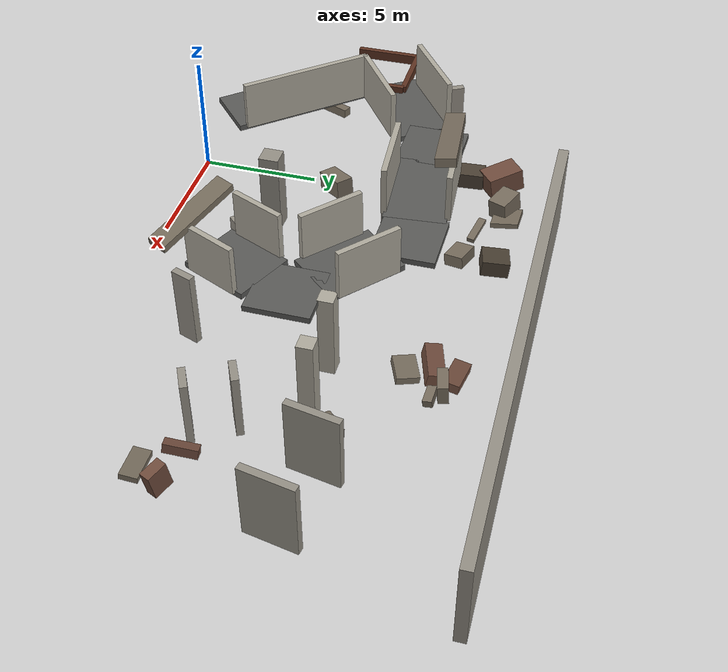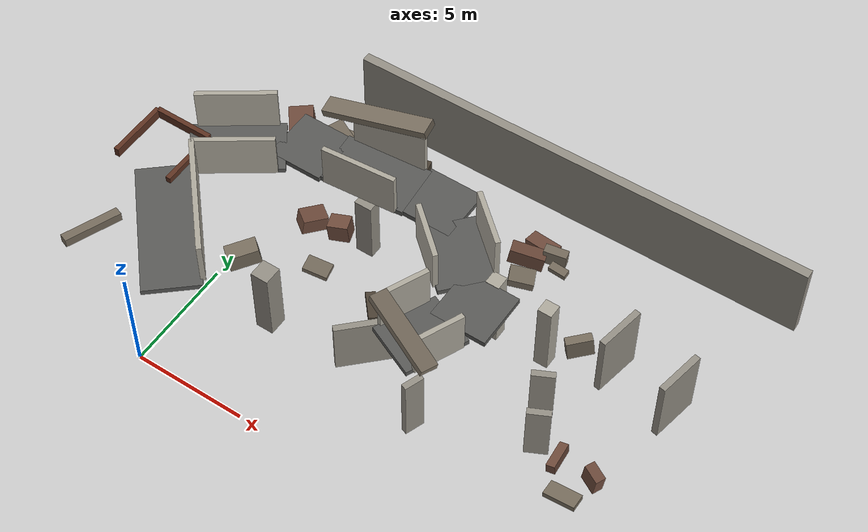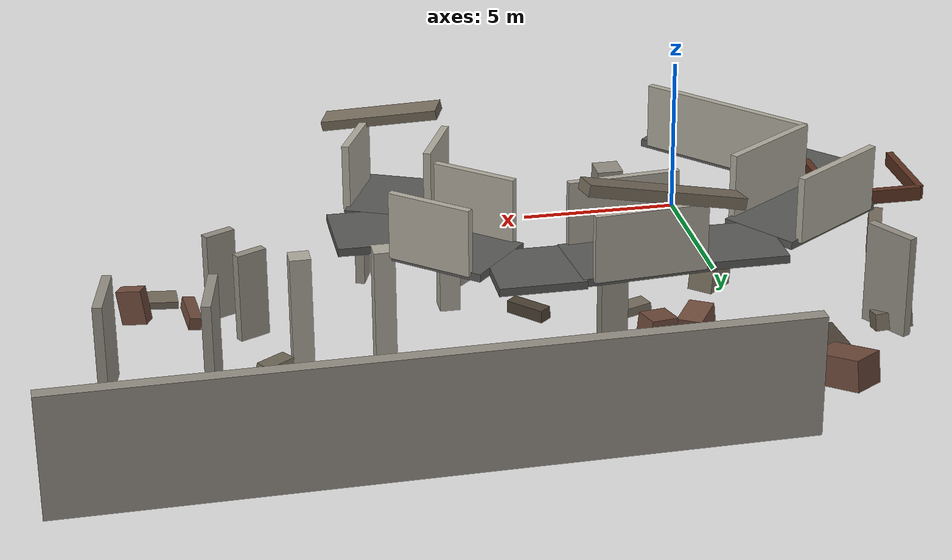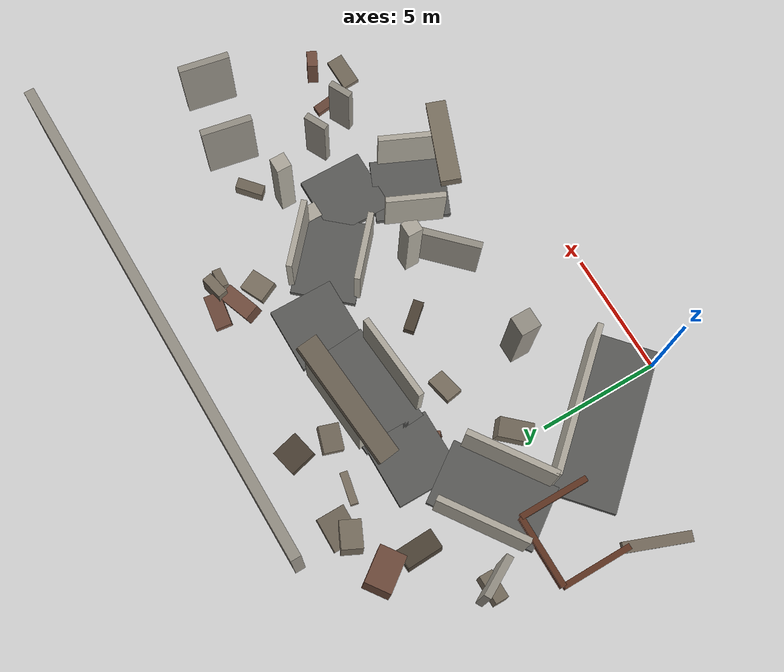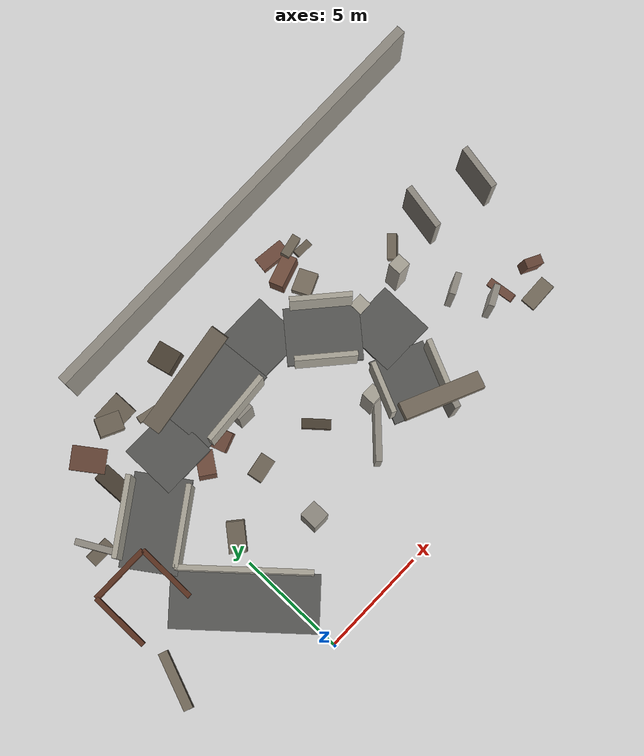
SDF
<sdf version="1.6">
 <model name="ruins_urban_01_medium">
  <static>true</static>
  <link name="002_north_boundary_east">
   <pose>10.50000 15.90000 1.80000 0.00000 0.00000 0.01500</pose>
   <visual name="visual">
    <geometry><box><size>21.00000 0.42000 3.60000</size></box></geometry>
    <material>
     <ambient>0.580 0.560 0.520 1</ambient>
     <diffuse>0.580 0.560 0.520 1</diffuse>
     <specular>0.03 0.03 0.03 1</specular>
    </material>
   </visual>
   <collision name="collision">
    <geometry><box><size>21.00000 0.42000 3.60000</size></box></geometry>
    <surface>
     <contact><collide_bitmask>0x01</collide_bitmask></contact>
     <friction><ode><mu>1.0</mu><mu2>1.0</mu2></ode></friction>
    </surface>
   </collision>
  </link>
  <link name="016_ground_corridor_n4_n5_left">
   <pose>-3.94751 9.97361 1.57500 0.00000 0.00000 -1.06370</pose>
   <visual name="visual">
    <geometry><box><size>1.64782 0.28000 3.15000</size></box></geometry>
    <material>
     <ambient>0.580 0.560 0.520 1</ambient>
     <diffuse>0.580 0.560 0.520 1</diffuse>
     <specular>0.03 0.03 0.03 1</specular>
    </material>
   </visual>
   <collision name="collision">
    <geometry><box><size>1.64782 0.28000 3.15000</size></box></geometry>
    <surface>
     <contact><collide_bitmask>0x01</collide_bitmask></contact>
     <friction><ode><mu>1.0</mu><mu2>1.0</mu2></ode></friction>
    </surface>
   </collision>
  </link>
  <link name="026_ground_corridor_g7_en1_left">
   <pose>10.85071 3.46194 1.57500 0.00000 0.00000 1.22007</pose>
   <visual name="visual">
    <geometry><box><size>0.86578 0.28000 3.15000</size></box></geometry>
    <material>
     <ambient>0.580 0.560 0.520 1</ambient>
     <diffuse>0.580 0.560 0.520 1</diffuse>
     <specular>0.03 0.03 0.03 1</specular>
    </material>
   </visual>
   <collision name="collision">
    <geometry><box><size>0.86578 0.28000 3.15000</size></box></geometry>
    <surface>
     <contact><collide_bitmask>0x01</collide_bitmask></contact>
     <friction><ode><mu>1.0</mu><mu2>1.0</mu2></ode></friction>
    </surface>
   </collision>
  </link>
  <link name="028_ground_corridor_en1_en2_left">
   <pose>14.61316 6.77368 1.37500 0.00000 0.00000 0.46365</pose>
   <visual name="visual">
    <geometry><box><size>0.97214 0.28000 2.75000</size></box></geometry>
    <material>
     <ambient>0.580 0.560 0.520 1</ambient>
     <diffuse>0.580 0.560 0.520 1</diffuse>
     <specular>0.03 0.03 0.03 1</specular>
    </material>
   </visual>
   <collision name="collision">
    <geometry><box><size>0.97214 0.28000 2.75000</size></box></geometry>
    <surface>
     <contact><collide_bitmask>0x01</collide_bitmask></contact>
     <friction><ode><mu>1.0</mu><mu2>1.0</mu2></ode></friction>
    </surface>
   </collision>
  </link>
  <link name="029_ground_corridor_en1_en2_right">
   <pose>15.38684 5.22632 1.37500 0.00000 0.00000 0.46365</pose>
   <visual name="visual">
    <geometry><box><size>0.97214 0.28000 2.75000</size></box></geometry>
    <material>
     <ambient>0.580 0.560 0.520 1</ambient>
     <diffuse>0.580 0.560 0.520 1</diffuse>
     <specular>0.03 0.03 0.03 1</specular>
    </material>
   </visual>
   <collision name="collision">
    <geometry><box><size>0.97214 0.28000 2.75000</size></box></geometry>
    <surface>
     <contact><collide_bitmask>0x01</collide_bitmask></contact>
     <friction><ode><mu>1.0</mu><mu2>1.0</mu2></ode></friction>
    </surface>
   </collision>
  </link>
  <link name="030_ground_corridor_en2_dead_ne_left">
   <pose>16.03403 10.01654 1.57500 0.00000 0.00000 1.39094</pose>
   <visual name="visual">
    <geometry><box><size>2.09017 0.28000 3.15000</size></box></geometry>
    <material>
     <ambient>0.580 0.560 0.520 1</ambient>
     <diffuse>0.580 0.560 0.520 1</diffuse>
     <specular>0.03 0.03 0.03 1</specular>
    </material>
   </visual>
   <collision name="collision">
    <geometry><box><size>2.09017 0.28000 3.15000</size></box></geometry>
    <surface>
     <contact><collide_bitmask>0x01</collide_bitmask></contact>
     <friction><ode><mu>1.0</mu><mu2>1.0</mu2></ode></friction>
    </surface>
   </collision>
  </link>
  <link name="031_ground_corridor_en2_dead_ne_right">
   <pose>18.96597 9.48346 1.57500 0.00000 0.00000 1.39094</pose>
   <visual name="visual">
    <geometry><box><size>2.09017 0.28000 3.15000</size></box></geometry>
    <material>
     <ambient>0.580 0.560 0.520 1</ambient>
     <diffuse>0.580 0.560 0.520 1</diffuse>
     <specular>0.03 0.03 0.03 1</specular>
    </material>
   </visual>
   <collision name="collision">
    <geometry><box><size>2.09017 0.28000 3.15000</size></box></geometry>
    <surface>
     <contact><collide_bitmask>0x01</collide_bitmask></contact>
     <friction><ode><mu>1.0</mu><mu2>1.0</mu2></ode></friction>
    </surface>
   </collision>
  </link>
  <link name="054_fixed_column_03">
   <pose>8.60000 6.00000 1.75000 0.00000 0.00000 0.00000</pose>
   <visual name="visual">
    <geometry><box><size>0.62000 0.62000 3.50000</size></box></geometry>
    <material>
     <ambient>0.680 0.660 0.610 1</ambient>
     <diffuse>0.680 0.660 0.610 1</diffuse>
     <specular>0.03 0.03 0.03 1</specular>
    </material>
   </visual>
   <collision name="collision">
    <geometry><box><size>0.62000 0.62000 3.50000</size></box></geometry>
    <surface>
     <contact><collide_bitmask>0x01</collide_bitmask></contact>
     <friction><ode><mu>1.0</mu><mu2>1.0</mu2></ode></friction>
    </surface>
   </collision>
  </link>
  <link name="055_fixed_column_07">
   <pose>11.00000 9.00000 1.75000 0.00000 0.00000 0.00000</pose>
   <visual name="visual">
    <geometry><box><size>0.62000 0.62000 3.50000</size></box></geometry>
    <material>
     <ambient>0.680 0.660 0.610 1</ambient>
     <diffuse>0.680 0.660 0.610 1</diffuse>
     <specular>0.03 0.03 0.03 1</specular>
    </material>
   </visual>
   <collision name="collision">
    <geometry><box><size>0.62000 0.62000 3.50000</size></box></geometry>
    <surface>
     <contact><collide_bitmask>0x01</collide_bitmask></contact>
     <friction><ode><mu>1.0</mu><mu2>1.0</mu2></ode></friction>
    </surface>
   </collision>
  </link>
  <link name="056_fixed_column_08">
   <pose>13.40000 9.00000 1.75000 0.00000 0.00000 0.00000</pose>
   <visual name="visual">
    <geometry><box><size>0.62000 0.62000 3.50000</size></box></geometry>
    <material>
     <ambient>0.680 0.660 0.610 1</ambient>
     <diffuse>0.680 0.660 0.610 1</diffuse>
     <specular>0.03 0.03 0.03 1</specular>
    </material>
   </visual>
   <collision name="collision">
    <geometry><box><size>0.62000 0.62000 3.50000</size></box></geometry>
    <surface>
     <contact><collide_bitmask>0x01</collide_bitmask></contact>
     <friction><ode><mu>1.0</mu><mu2>1.0</mu2></ode></friction>
    </surface>
   </collision>
  </link>
  <link name="063_upper_walkway_ua_u1">
   <pose>-1.50000 8.75000 3.36000 0.00000 0.00000 0.61073</pose>
   <visual name="visual">
    <geometry><box><size>4.00328 2.45000 0.24000</size></box></geometry>
    <material>
     <ambient>0.350 0.350 0.340 1</ambient>
     <diffuse>0.350 0.350 0.340 1</diffuse>
     <specular>0.03 0.03 0.03 1</specular>
    </material>
   </visual>
   <collision name="collision">
    <geometry><box><size>4.00328 2.45000 0.24000</size></box></geometry>
    <surface>
     <contact><collide_bitmask>0x01</collide_bitmask></contact>
     <friction><ode><mu>1.0</mu><mu2>1.0</mu2></ode></friction>
    </surface>
   </collision>
  </link>
  <link name="064_upper_corridor_ua_u1_left">
   <pose>-2.20823 9.76175 4.38000 0.00000 0.00000 0.61073</pose>
   <visual name="visual">
    <geometry><box><size>3.40328 0.22000 2.00000</size></box></geometry>
    <material>
     <ambient>0.680 0.660 0.610 1</ambient>
     <diffuse>0.680 0.660 0.610 1</diffuse>
     <specular>0.03 0.03 0.03 1</specular>
    </material>
   </visual>
   <collision name="collision">
    <geometry><box><size>3.40328 0.22000 2.00000</size></box></geometry>
    <surface>
     <contact><collide_bitmask>0x01</collide_bitmask></contact>
     <friction><ode><mu>1.0</mu><mu2>1.0</mu2></ode></friction>
    </surface>
   </collision>
  </link>
  <link name="065_upper_corridor_ua_u1_right">
   <pose>-0.79177 7.73825 4.38000 0.00000 0.00000 0.61073</pose>
   <visual name="visual">
    <geometry><box><size>3.40328 0.22000 2.00000</size></box></geometry>
    <material>
     <ambient>0.680 0.660 0.610 1</ambient>
     <diffuse>0.680 0.660 0.610 1</diffuse>
     <specular>0.03 0.03 0.03 1</specular>
    </material>
   </visual>
   <collision name="collision">
    <geometry><box><size>3.40328 0.22000 2.00000</size></box></geometry>
    <surface>
     <contact><collide_bitmask>0x01</collide_bitmask></contact>
     <friction><ode><mu>1.0</mu><mu2>1.0</mu2></ode></friction>
    </surface>
   </collision>
  </link>
  <link name="066_upper_walkway_u1_u2">
   <pose>4.00000 10.75000 3.36000 0.00000 0.00000 0.08314</pose>
   <visual name="visual">
    <geometry><box><size>3.92080 2.45000 0.24000</size></box></geometry>
    <material>
     <ambient>0.350 0.350 0.340 1</ambient>
     <diffuse>0.350 0.350 0.340 1</diffuse>
     <specular>0.03 0.03 0.03 1</specular>
    </material>
   </visual>
   <collision name="collision">
    <geometry><box><size>3.92080 2.45000 0.24000</size></box></geometry>
    <surface>
     <contact><collide_bitmask>0x01</collide_bitmask></contact>
     <friction><ode><mu>1.0</mu><mu2>1.0</mu2></ode></friction>
    </surface>
   </collision>
  </link>
  <link name="067_upper_corridor_u1_u2_left">
   <pose>3.89744 11.98073 4.38000 0.00000 0.00000 0.08314</pose>
   <visual name="visual">
    <geometry><box><size>3.32080 0.22000 2.00000</size></box></geometry>
    <material>
     <ambient>0.680 0.660 0.610 1</ambient>
     <diffuse>0.680 0.660 0.610 1</diffuse>
     <specular>0.03 0.03 0.03 1</specular>
    </material>
   </visual>
   <collision name="collision">
    <geometry><box><size>3.32080 0.22000 2.00000</size></box></geometry>
    <surface>
     <contact><collide_bitmask>0x01</collide_bitmask></contact>
     <friction><ode><mu>1.0</mu><mu2>1.0</mu2></ode></friction>
    </surface>
   </collision>
  </link>
  <link name="068_upper_corridor_u1_u2_right">
   <pose>4.10256 9.51927 4.38000 0.00000 0.00000 0.08314</pose>
   <visual name="visual">
    <geometry><box><size>3.32080 0.22000 2.00000</size></box></geometry>
    <material>
     <ambient>0.680 0.660 0.610 1</ambient>
     <diffuse>0.680 0.660 0.610 1</diffuse>
     <specular>0.03 0.03 0.03 1</specular>
    </material>
   </visual>
   <collision name="collision">
    <geometry><box><size>3.32080 0.22000 2.00000</size></box></geometry>
    <surface>
     <contact><collide_bitmask>0x01</collide_bitmask></contact>
     <friction><ode><mu>1.0</mu><mu2>1.0</mu2></ode></friction>
    </surface>
   </collision>
  </link>
  <link name="069_upper_walkway_u2_u3">
   <pose>9.00000 9.25000 3.36000 0.00000 0.00000 -0.71883</pose>
   <visual name="visual">
    <geometry><box><size>3.21507 2.45000 0.24000</size></box></geometry>
    <material>
     <ambient>0.350 0.350 0.340 1</ambient>
     <diffuse>0.350 0.350 0.340 1</diffuse>
     <specular>0.03 0.03 0.03 1</specular>
    </material>
   </visual>
   <collision name="collision">
    <geometry><box><size>3.21507 2.45000 0.24000</size></box></geometry>
    <surface>
     <contact><collide_bitmask>0x01</collide_bitmask></contact>
     <friction><ode><mu>1.0</mu><mu2>1.0</mu2></ode></friction>
    </surface>
   </collision>
  </link>
  <link name="070_upper_corridor_u2_u3_left">
   <pose>9.81325 10.17943 4.38000 0.00000 0.00000 -0.71883</pose>
   <visual name="visual">
    <geometry><box><size>2.61507 0.22000 2.00000</size></box></geometry>
    <material>
     <ambient>0.680 0.660 0.610 1</ambient>
     <diffuse>0.680 0.660 0.610 1</diffuse>
     <specular>0.03 0.03 0.03 1</specular>
    </material>
   </visual>
   <collision name="collision">
    <geometry><box><size>2.61507 0.22000 2.00000</size></box></geometry>
    <surface>
     <contact><collide_bitmask>0x01</collide_bitmask></contact>
     <friction><ode><mu>1.0</mu><mu2>1.0</mu2></ode></friction>
    </surface>
   </collision>
  </link>
  <link name="071_upper_corridor_u2_u3_right">
   <pose>8.18675 8.32057 4.38000 0.00000 0.00000 -0.71883</pose>
   <visual name="visual">
    <geometry><box><size>2.61507 0.22000 2.00000</size></box></geometry>
    <material>
     <ambient>0.680 0.660 0.610 1</ambient>
     <diffuse>0.680 0.660 0.610 1</diffuse>
     <specular>0.03 0.03 0.03 1</specular>
    </material>
   </visual>
   <collision name="collision">
    <geometry><box><size>2.61507 0.22000 2.00000</size></box></geometry>
    <surface>
     <contact><collide_bitmask>0x01</collide_bitmask></contact>
     <friction><ode><mu>1.0</mu><mu2>1.0</mu2></ode></friction>
    </surface>
   </collision>
  </link>
  <link name="072_upper_walkway_u3_u4">
   <pose>10.00000 5.25000 3.36000 0.00000 0.00000 -1.98902</pose>
   <visual name="visual">
    <geometry><box><size>2.82443 2.45000 0.24000</size></box></geometry>
    <material>
     <ambient>0.350 0.350 0.340 1</ambient>
     <diffuse>0.350 0.350 0.340 1</diffuse>
     <specular>0.03 0.03 0.03 1</specular>
    </material>
   </visual>
   <collision name="collision">
    <geometry><box><size>2.82443 2.45000 0.24000</size></box></geometry>
    <surface>
     <contact><collide_bitmask>0x01</collide_bitmask></contact>
     <friction><ode><mu>1.0</mu><mu2>1.0</mu2></ode></friction>
    </surface>
   </collision>
  </link>
  <link name="073_upper_corridor_u3_u4_left">
   <pose>11.12856 4.74842 4.38000 0.00000 0.00000 -1.98902</pose>
   <visual name="visual">
    <geometry><box><size>2.22443 0.22000 2.00000</size></box></geometry>
    <material>
     <ambient>0.680 0.660 0.610 1</ambient>
     <diffuse>0.680 0.660 0.610 1</diffuse>
     <specular>0.03 0.03 0.03 1</specular>
    </material>
   </visual>
   <collision name="collision">
    <geometry><box><size>2.22443 0.22000 2.00000</size></box></geometry>
    <surface>
     <contact><collide_bitmask>0x01</collide_bitmask></contact>
     <friction><ode><mu>1.0</mu><mu2>1.0</mu2></ode></friction>
    </surface>
   </collision>
  </link>
  <link name="074_upper_corridor_u3_u4_right">
   <pose>8.87144 5.75158 4.38000 0.00000 0.00000 -1.98902</pose>
   <visual name="visual">
    <geometry><box><size>2.22443 0.22000 2.00000</size></box></geometry>
    <material>
     <ambient>0.680 0.660 0.610 1</ambient>
     <diffuse>0.680 0.660 0.610 1</diffuse>
     <specular>0.03 0.03 0.03 1</specular>
    </material>
   </visual>
   <collision name="collision">
    <geometry><box><size>2.22443 0.22000 2.00000</size></box></geometry>
    <surface>
     <contact><collide_bitmask>0x01</collide_bitmask></contact>
     <friction><ode><mu>1.0</mu><mu2>1.0</mu2></ode></friction>
    </surface>
   </collision>
  </link>
  <link name="078_upper_walkway_uc_ua">
   <pose>-1.25000 3.90000 3.36000 0.00000 0.00000 2.29644</pose>
   <visual name="visual">
    <geometry><box><size>6.18794 2.45000 0.24000</size></box></geometry>
    <material>
     <ambient>0.350 0.350 0.340 1</ambient>
     <diffuse>0.350 0.350 0.340 1</diffuse>
     <specular>0.03 0.03 0.03 1</specular>
    </material>
   </visual>
   <collision name="collision">
    <geometry><box><size>6.18794 2.45000 0.24000</size></box></geometry>
    <surface>
     <contact><collide_bitmask>0x01</collide_bitmask></contact>
     <friction><ode><mu>1.0</mu><mu2>1.0</mu2></ode></friction>
    </surface>
   </collision>
  </link>
  <link name="080_upper_corridor_uc_ua_right">
   <pose>-0.32613 4.71956 4.38000 0.00000 0.00000 2.29644</pose>
   <visual name="visual">
    <geometry><box><size>5.58794 0.22000 2.00000</size></box></geometry>
    <material>
     <ambient>0.680 0.660 0.610 1</ambient>
     <diffuse>0.680 0.660 0.610 1</diffuse>
     <specular>0.03 0.03 0.03 1</specular>
    </material>
   </visual>
   <collision name="collision">
    <geometry><box><size>5.58794 0.22000 2.00000</size></box></geometry>
    <surface>
     <contact><collide_bitmask>0x01</collide_bitmask></contact>
     <friction><ode><mu>1.0</mu><mu2>1.0</mu2></ode></friction>
    </surface>
   </collision>
  </link>
  <link name="081_upper_node_platform_u1">
   <pose>1.00000 10.50000 3.36000 0.00000 0.00000 0.00000</pose>
   <visual name="visual">
    <geometry><box><size>2.50000 2.50000 0.24000</size></box></geometry>
    <material>
     <ambient>0.350 0.350 0.340 1</ambient>
     <diffuse>0.350 0.350 0.340 1</diffuse>
     <specular>0.03 0.03 0.03 1</specular>
    </material>
   </visual>
   <collision name="collision">
    <geometry><box><size>2.50000 2.50000 0.24000</size></box></geometry>
    <surface>
     <contact><collide_bitmask>0x01</collide_bitmask></contact>
     <friction><ode><mu>1.0</mu><mu2>1.0</mu2></ode></friction>
    </surface>
   </collision>
  </link>
  <link name="082_upper_node_platform_u2">
   <pose>7.00000 11.00000 3.36000 0.00000 0.00000 0.00000</pose>
   <visual name="visual">
    <geometry><box><size>2.50000 2.50000 0.24000</size></box></geometry>
    <material>
     <ambient>0.350 0.350 0.340 1</ambient>
     <diffuse>0.350 0.350 0.340 1</diffuse>
     <specular>0.03 0.03 0.03 1</specular>
    </material>
   </visual>
   <collision name="collision">
    <geometry><box><size>2.50000 2.50000 0.24000</size></box></geometry>
    <surface>
     <contact><collide_bitmask>0x01</collide_bitmask></contact>
     <friction><ode><mu>1.0</mu><mu2>1.0</mu2></ode></friction>
    </surface>
   </collision>
  </link>
  <link name="083_upper_node_platform_u3">
   <pose>11.00000 7.50000 3.36000 0.00000 0.00000 0.00000</pose>
   <visual name="visual">
    <geometry><box><size>2.50000 2.50000 0.24000</size></box></geometry>
    <material>
     <ambient>0.350 0.350 0.340 1</ambient>
     <diffuse>0.350 0.350 0.340 1</diffuse>
     <specular>0.03 0.03 0.03 1</specular>
    </material>
   </visual>
   <collision name="collision">
    <geometry><box><size>2.50000 2.50000 0.24000</size></box></geometry>
    <surface>
     <contact><collide_bitmask>0x01</collide_bitmask></contact>
     <friction><ode><mu>1.0</mu><mu2>1.0</mu2></ode></friction>
    </surface>
   </collision>
  </link>
  <link name="085_connector_a_frame_0">
   <pose>-5.35000 7.00000 3.55000 0.00000 0.00000 0.00000</pose>
   <visual name="visual">
    <geometry><box><size>0.22000 2.70000 0.42000</size></box></geometry>
    <material>
     <ambient>0.370 0.200 0.130 1</ambient>
     <diffuse>0.370 0.200 0.130 1</diffuse>
     <specular>0.03 0.03 0.03 1</specular>
    </material>
   </visual>
   <collision name="collision">
    <geometry><box><size>0.22000 2.70000 0.42000</size></box></geometry>
    <surface>
     <contact><collide_bitmask>0x01</collide_bitmask></contact>
     <friction><ode><mu>1.0</mu><mu2>1.0</mu2></ode></friction>
    </surface>
   </collision>
  </link>
  <link name="086_connector_a_frame_1">
   <pose>-2.65000 7.00000 3.55000 0.00000 0.00000 0.00000</pose>
   <visual name="visual">
    <geometry><box><size>0.22000 2.70000 0.42000</size></box></geometry>
    <material>
     <ambient>0.370 0.200 0.130 1</ambient>
     <diffuse>0.370 0.200 0.130 1</diffuse>
     <specular>0.03 0.03 0.03 1</specular>
    </material>
   </visual>
   <collision name="collision">
    <geometry><box><size>0.22000 2.70000 0.42000</size></box></geometry>
    <surface>
     <contact><collide_bitmask>0x01</collide_bitmask></contact>
     <friction><ode><mu>1.0</mu><mu2>1.0</mu2></ode></friction>
    </surface>
   </collision>
  </link>
  <link name="087_connector_a_frame_3">
   <pose>-4.00000 8.35000 3.55000 0.00000 0.00000 0.00000</pose>
   <visual name="visual">
    <geometry><box><size>2.70000 0.22000 0.42000</size></box></geometry>
    <material>
     <ambient>0.370 0.200 0.130 1</ambient>
     <diffuse>0.370 0.200 0.130 1</diffuse>
     <specular>0.03 0.03 0.03 1</specular>
    </material>
   </visual>
   <collision name="collision">
    <geometry><box><size>2.70000 0.22000 0.42000</size></box></geometry>
    <surface>
     <contact><collide_bitmask>0x01</collide_bitmask></contact>
     <friction><ode><mu>1.0</mu><mu2>1.0</mu2></ode></friction>
    </surface>
   </collision>
  </link>
  <link name="091_medium_random_column_00">
   <pose>4.37545 9.60176 1.54215 0.00000 0.00000 0.00000</pose>
   <visual name="visual">
    <geometry><box><size>0.79094 0.57950 3.08430</size></box></geometry>
    <material>
     <ambient>0.580 0.560 0.520 1</ambient>
     <diffuse>0.580 0.560 0.520 1</diffuse>
     <specular>0.03 0.03 0.03 1</specular>
    </material>
   </visual>
   <collision name="collision">
    <geometry><box><size>0.79094 0.57950 3.08430</size></box></geometry>
    <surface>
     <contact><collide_bitmask>0x01</collide_bitmask></contact>
     <friction><ode><mu>1.0</mu><mu2>1.0</mu2></ode></friction>
    </surface>
   </collision>
  </link>
  <link name="095_medium_random_column_04">
   <pose>3.28664 4.28935 1.71620 0.00000 0.00000 0.00000</pose>
   <visual name="visual">
    <geometry><box><size>0.79444 0.82719 3.43240</size></box></geometry>
    <material>
     <ambient>0.580 0.560 0.520 1</ambient>
     <diffuse>0.580 0.560 0.520 1</diffuse>
     <specular>0.03 0.03 0.03 1</specular>
    </material>
   </visual>
   <collision name="collision">
    <geometry><box><size>0.79444 0.82719 3.43240</size></box></geometry>
    <surface>
     <contact><collide_bitmask>0x01</collide_bitmask></contact>
     <friction><ode><mu>1.0</mu><mu2>1.0</mu2></ode></friction>
    </surface>
   </collision>
  </link>
  <link name="101_medium_rubble_000">
   <pose>10.20111 12.77657 0.33011 -0.15944 0.14779 0.32624</pose>
   <visual name="visual">
    <geometry><box><size>1.50615 0.66863 0.66022</size></box></geometry>
    <material>
     <ambient>0.430 0.290 0.230 1</ambient>
     <diffuse>0.430 0.290 0.230 1</diffuse>
     <specular>0.03 0.03 0.03 1</specular>
    </material>
   </visual>
   <collision name="collision">
    <geometry><box><size>1.50615 0.66863 0.66022</size></box></geometry>
    <surface>
     <contact><collide_bitmask>0x01</collide_bitmask></contact>
     <friction><ode><mu>1.0</mu><mu2>1.0</mu2></ode></friction>
    </surface>
   </collision>
  </link>
  <link name="103_medium_rubble_002">
   <pose>0.44531 6.18012 0.38949 -0.02683 -0.14490 0.87376</pose>
   <visual name="visual">
    <geometry><box><size>1.36983 0.78126 0.77899</size></box></geometry>
    <material>
     <ambient>0.460 0.420 0.360 1</ambient>
     <diffuse>0.460 0.420 0.360 1</diffuse>
     <specular>0.03 0.03 0.03 1</specular>
    </material>
   </visual>
   <collision name="collision">
    <geometry><box><size>1.36983 0.78126 0.77899</size></box></geometry>
    <surface>
     <contact><collide_bitmask>0x01</collide_bitmask></contact>
     <friction><ode><mu>1.0</mu><mu2>1.0</mu2></ode></friction>
    </surface>
   </collision>
  </link>
  <link name="105_medium_rubble_004">
   <pose>10.42092 13.67901 0.19108 0.08624 0.09717 3.00904</pose>
   <visual name="visual">
    <geometry><box><size>1.40948 0.67061 0.38216</size></box></geometry>
    <material>
     <ambient>0.430 0.290 0.230 1</ambient>
     <diffuse>0.430 0.290 0.230 1</diffuse>
     <specular>0.03 0.03 0.03 1</specular>
    </material>
   </visual>
   <collision name="collision">
    <geometry><box><size>1.40948 0.67061 0.38216</size></box></geometry>
    <surface>
     <contact><collide_bitmask>0x01</collide_bitmask></contact>
     <friction><ode><mu>1.0</mu><mu2>1.0</mu2></ode></friction>
    </surface>
   </collision>
  </link>
  <link name="106_medium_rubble_005">
   <pose>0.61683 13.77116 0.10418 0.13217 -0.15711 0.00430</pose>
   <visual name="visual">
    <geometry><box><size>1.38966 1.16817 0.20837</size></box></geometry>
    <material>
     <ambient>0.460 0.420 0.360 1</ambient>
     <diffuse>0.460 0.420 0.360 1</diffuse>
     <specular>0.03 0.03 0.03 1</specular>
    </material>
   </visual>
   <collision name="collision">
    <geometry><box><size>1.38966 1.16817 0.20837</size></box></geometry>
    <surface>
     <contact><collide_bitmask>0x01</collide_bitmask></contact>
     <friction><ode><mu>1.0</mu><mu2>1.0</mu2></ode></friction>
    </surface>
   </collision>
  </link>
  <link name="108_medium_rubble_007">
   <pose>-1.60134 11.59699 0.37093 0.08035 -0.01849 1.61252</pose>
   <visual name="visual">
    <geometry><box><size>1.48951 0.80321 0.74186</size></box></geometry>
    <material>
     <ambient>0.290 0.250 0.200 1</ambient>
     <diffuse>0.290 0.250 0.200 1</diffuse>
     <specular>0.03 0.03 0.03 1</specular>
    </material>
   </visual>
   <collision name="collision">
    <geometry><box><size>1.48951 0.80321 0.74186</size></box></geometry>
    <surface>
     <contact><collide_bitmask>0x01</collide_bitmask></contact>
     <friction><ode><mu>1.0</mu><mu2>1.0</mu2></ode></friction>
    </surface>
   </collision>
  </link>
  <link name="110_medium_rubble_009">
   <pose>0.07976 13.55619 0.43268 0.11655 -0.05956 1.13116</pose>
   <visual name="visual">
    <geometry><box><size>0.83933 1.11946 0.86535</size></box></geometry>
    <material>
     <ambient>0.460 0.420 0.360 1</ambient>
     <diffuse>0.460 0.420 0.360 1</diffuse>
     <specular>0.03 0.03 0.03 1</specular>
    </material>
   </visual>
   <collision name="collision">
    <geometry><box><size>0.83933 1.11946 0.86535</size></box></geometry>
    <surface>
     <contact><collide_bitmask>0x01</collide_bitmask></contact>
     <friction><ode><mu>1.0</mu><mu2>1.0</mu2></ode></friction>
    </surface>
   </collision>
  </link>
  <link name="111_medium_rubble_010">
   <pose>17.33277 4.03508 0.11808 -0.08961 -0.07105 0.03451</pose>
   <visual name="visual">
    <geometry><box><size>1.36360 0.69412 0.23616</size></box></geometry>
    <material>
     <ambient>0.460 0.420 0.360 1</ambient>
     <diffuse>0.460 0.420 0.360 1</diffuse>
     <specular>0.03 0.03 0.03 1</specular>
    </material>
   </visual>
   <collision name="collision">
    <geometry><box><size>1.36360 0.69412 0.23616</size></box></geometry>
    <surface>
     <contact><collide_bitmask>0x01</collide_bitmask></contact>
     <friction><ode><mu>1.0</mu><mu2>1.0</mu2></ode></friction>
    </surface>
   </collision>
  </link>
  <link name="113_medium_rubble_012">
   <pose>-1.63152 13.12420 0.47627 -0.05520 -0.15013 2.21264</pose>
   <visual name="visual">
    <geometry><box><size>1.54456 1.07797 0.95254</size></box></geometry>
    <material>
     <ambient>0.430 0.290 0.230 1</ambient>
     <diffuse>0.430 0.290 0.230 1</diffuse>
     <specular>0.03 0.03 0.03 1</specular>
    </material>
   </visual>
   <collision name="collision">
    <geometry><box><size>1.54456 1.07797 0.95254</size></box></geometry>
    <surface>
     <contact><collide_bitmask>0x01</collide_bitmask></contact>
     <friction><ode><mu>1.0</mu><mu2>1.0</mu2></ode></friction>
    </surface>
   </collision>
  </link>
  <link name="114_medium_rubble_013">
   <pose>11.60874 12.97579 0.14824 -0.17265 -0.04139 3.10747</pose>
   <visual name="visual">
    <geometry><box><size>0.79978 0.35999 0.29647</size></box></geometry>
    <material>
     <ambient>0.460 0.420 0.360 1</ambient>
     <diffuse>0.460 0.420 0.360 1</diffuse>
     <specular>0.03 0.03 0.03 1</specular>
    </material>
   </visual>
   <collision name="collision">
    <geometry><box><size>0.79978 0.35999 0.29647</size></box></geometry>
    <surface>
     <contact><collide_bitmask>0x01</collide_bitmask></contact>
     <friction><ode><mu>1.0</mu><mu2>1.0</mu2></ode></friction>
    </surface>
   </collision>
  </link>
  <link name="115_medium_rubble_014">
   <pose>6.34537 7.08697 0.19472 0.02694 -0.01397 2.28746</pose>
   <visual name="visual">
    <geometry><box><size>1.29559 0.43148 0.38945</size></box></geometry>
    <material>
     <ambient>0.290 0.250 0.200 1</ambient>
     <diffuse>0.290 0.250 0.200 1</diffuse>
     <specular>0.03 0.03 0.03 1</specular>
    </material>
   </visual>
   <collision name="collision">
    <geometry><box><size>1.29559 0.43148 0.38945</size></box></geometry>
    <surface>
     <contact><collide_bitmask>0x01</collide_bitmask></contact>
     <friction><ode><mu>1.0</mu><mu2>1.0</mu2></ode></friction>
    </surface>
   </collision>
  </link>
  <link name="116_medium_rubble_015">
   <pose>3.70672 12.36690 0.25198 -0.11958 0.07832 2.84793</pose>
   <visual name="visual">
    <geometry><box><size>1.06797 0.81038 0.50395</size></box></geometry>
    <material>
     <ambient>0.460 0.420 0.360 1</ambient>
     <diffuse>0.460 0.420 0.360 1</diffuse>
     <specular>0.03 0.03 0.03 1</specular>
    </material>
   </visual>
   <collision name="collision">
    <geometry><box><size>1.06797 0.81038 0.50395</size></box></geometry>
    <surface>
     <contact><collide_bitmask>0x01</collide_bitmask></contact>
     <friction><ode><mu>1.0</mu><mu2>1.0</mu2></ode></friction>
    </surface>
   </collision>
  </link>
  <link name="120_medium_rubble_019">
   <pose>1.73472 12.68392 0.09622 0.03219 -0.11227 2.94375</pose>
   <visual name="visual">
    <geometry><box><size>1.32218 0.31427 0.19245</size></box></geometry>
    <material>
     <ambient>0.460 0.420 0.360 1</ambient>
     <diffuse>0.460 0.420 0.360 1</diffuse>
     <specular>0.03 0.03 0.03 1</specular>
    </material>
   </visual>
   <collision name="collision">
    <geometry><box><size>1.32218 0.31427 0.19245</size></box></geometry>
    <surface>
     <contact><collide_bitmask>0x01</collide_bitmask></contact>
     <friction><ode><mu>1.0</mu><mu2>1.0</mu2></ode></friction>
    </surface>
   </collision>
  </link>
  <link name="121_medium_rubble_020">
   <pose>1.73028 9.29517 0.38337 0.04619 0.14357 0.96046</pose>
   <visual name="visual">
    <geometry><box><size>1.09811 0.78510 0.76673</size></box></geometry>
    <material>
     <ambient>0.430 0.290 0.230 1</ambient>
     <diffuse>0.430 0.290 0.230 1</diffuse>
     <specular>0.03 0.03 0.03 1</specular>
    </material>
   </visual>
   <collision name="collision">
    <geometry><box><size>1.09811 0.78510 0.76673</size></box></geometry>
    <surface>
     <contact><collide_bitmask>0x01</collide_bitmask></contact>
     <friction><ode><mu>1.0</mu><mu2>1.0</mu2></ode></friction>
    </surface>
   </collision>
  </link>
  <link name="122_medium_rubble_021">
   <pose>3.86083 13.84879 0.33349 -0.04968 0.10554 1.79880</pose>
   <visual name="visual">
    <geometry><box><size>1.12361 1.07119 0.66699</size></box></geometry>
    <material>
     <ambient>0.290 0.250 0.200 1</ambient>
     <diffuse>0.290 0.250 0.200 1</diffuse>
     <specular>0.03 0.03 0.03 1</specular>
    </material>
   </visual>
   <collision name="collision">
    <geometry><box><size>1.12361 1.07119 0.66699</size></box></geometry>
    <surface>
     <contact><collide_bitmask>0x01</collide_bitmask></contact>
     <friction><ode><mu>1.0</mu><mu2>1.0</mu2></ode></friction>
    </surface>
   </collision>
  </link>
  <link name="127_medium_rubble_026">
   <pose>10.54978 11.79833 0.17356 -0.08693 0.13433 0.41893</pose>
   <visual name="visual">
    <geometry><box><size>1.09030 0.88882 0.34712</size></box></geometry>
    <material>
     <ambient>0.460 0.420 0.360 1</ambient>
     <diffuse>0.460 0.420 0.360 1</diffuse>
     <specular>0.03 0.03 0.03 1</specular>
    </material>
   </visual>
   <collision name="collision">
    <geometry><box><size>1.09030 0.88882 0.34712</size></box></geometry>
    <surface>
     <contact><collide_bitmask>0x01</collide_bitmask></contact>
     <friction><ode><mu>1.0</mu><mu2>1.0</mu2></ode></friction>
    </surface>
   </collision>
  </link>
  <link name="130_medium_rubble_029">
   <pose>-4.10247 9.97063 0.26237 0.06137 -0.17564 1.56371</pose>
   <visual name="visual">
    <geometry><box><size>0.56811 1.14106 0.52475</size></box></geometry>
    <material>
     <ambient>0.460 0.420 0.360 1</ambient>
     <diffuse>0.460 0.420 0.360 1</diffuse>
     <specular>0.03 0.03 0.03 1</specular>
    </material>
   </visual>
   <collision name="collision">
    <geometry><box><size>0.56811 1.14106 0.52475</size></box></geometry>
    <surface>
     <contact><collide_bitmask>0x01</collide_bitmask></contact>
     <friction><ode><mu>1.0</mu><mu2>1.0</mu2></ode></friction>
    </surface>
   </collision>
  </link>
  <link name="134_medium_rubble_033">
   <pose>14.35994 10.08624 0.41600 -0.10426 0.13199 2.31641</pose>
   <visual name="visual">
    <geometry><box><size>0.42850 1.12578 0.83200</size></box></geometry>
    <material>
     <ambient>0.460 0.420 0.360 1</ambient>
     <diffuse>0.460 0.420 0.360 1</diffuse>
     <specular>0.03 0.03 0.03 1</specular>
    </material>
   </visual>
   <collision name="collision">
    <geometry><box><size>0.42850 1.12578 0.83200</size></box></geometry>
    <surface>
     <contact><collide_bitmask>0x01</collide_bitmask></contact>
     <friction><ode><mu>1.0</mu><mu2>1.0</mu2></ode></friction>
    </surface>
   </collision>
  </link>
  <link name="137_medium_rubble_036">
   <pose>16.31304 5.30246 0.19548 -0.16209 0.11314 1.67386</pose>
   <visual name="visual">
    <geometry><box><size>1.28448 0.38016 0.39097</size></box></geometry>
    <material>
     <ambient>0.430 0.290 0.230 1</ambient>
     <diffuse>0.430 0.290 0.230 1</diffuse>
     <specular>0.03 0.03 0.03 1</specular>
    </material>
   </visual>
   <collision name="collision">
    <geometry><box><size>1.28448 0.38016 0.39097</size></box></geometry>
    <surface>
     <contact><collide_bitmask>0x01</collide_bitmask></contact>
     <friction><ode><mu>1.0</mu><mu2>1.0</mu2></ode></friction>
    </surface>
   </collision>
  </link>
  <link name="139_medium_rubble_038">
   <pose>3.30435 7.50020 0.13459 0.11507 0.11239 0.19378</pose>
   <visual name="visual">
    <geometry><box><size>1.10704 0.70906 0.26919</size></box></geometry>
    <material>
     <ambient>0.460 0.420 0.360 1</ambient>
     <diffuse>0.460 0.420 0.360 1</diffuse>
     <specular>0.03 0.03 0.03 1</specular>
    </material>
   </visual>
   <collision name="collision">
    <geometry><box><size>1.10704 0.70906 0.26919</size></box></geometry>
    <surface>
     <contact><collide_bitmask>0x01</collide_bitmask></contact>
     <friction><ode><mu>1.0</mu><mu2>1.0</mu2></ode></friction>
    </surface>
   </collision>
  </link>
  <link name="141_medium_rubble_040">
   <pose>17.99355 5.14201 0.53852 -0.02532 -0.15835 2.69720</pose>
   <visual name="visual">
    <geometry><box><size>0.79872 0.43717 1.07705</size></box></geometry>
    <material>
     <ambient>0.430 0.290 0.230 1</ambient>
     <diffuse>0.430 0.290 0.230 1</diffuse>
     <specular>0.03 0.03 0.03 1</specular>
    </material>
   </visual>
   <collision name="collision">
    <geometry><box><size>0.79872 0.43717 1.07705</size></box></geometry>
    <surface>
     <contact><collide_bitmask>0x01</collide_bitmask></contact>
     <friction><ode><mu>1.0</mu><mu2>1.0</mu2></ode></friction>
    </surface>
   </collision>
  </link>
  <link name="148_medium_rubble_047">
   <pose>11.21280 13.34748 0.41096 0.06299 0.05764 0.22836</pose>
   <visual name="visual">
    <geometry><box><size>1.00779 0.41499 0.82192</size></box></geometry>
    <material>
     <ambient>0.460 0.420 0.360 1</ambient>
     <diffuse>0.460 0.420 0.360 1</diffuse>
     <specular>0.03 0.03 0.03 1</specular>
    </material>
   </visual>
   <collision name="collision">
    <geometry><box><size>1.00779 0.41499 0.82192</size></box></geometry>
    <surface>
     <contact><collide_bitmask>0x01</collide_bitmask></contact>
     <friction><ode><mu>1.0</mu><mu2>1.0</mu2></ode></friction>
    </surface>
   </collision>
  </link>
  <link name="149_medium_rubble_048">
   <pose>3.00015 9.54624 0.42970 -0.10443 0.02436 1.90366</pose>
   <visual name="visual">
    <geometry><box><size>0.74362 0.90466 0.85940</size></box></geometry>
    <material>
     <ambient>0.430 0.290 0.230 1</ambient>
     <diffuse>0.430 0.290 0.230 1</diffuse>
     <specular>0.03 0.03 0.03 1</specular>
    </material>
   </visual>
   <collision name="collision">
    <geometry><box><size>0.74362 0.90466 0.85940</size></box></geometry>
    <surface>
     <contact><collide_bitmask>0x01</collide_bitmask></contact>
     <friction><ode><mu>1.0</mu><mu2>1.0</mu2></ode></friction>
    </surface>
   </collision>
  </link>
  <link name="165_medium_collapsed_wall_12">
   <pose>-5.73127 3.79551 0.26284 -0.07088 0.03146 1.21000</pose>
   <visual name="visual">
    <geometry><box><size>2.64864 0.42953 0.39108</size></box></geometry>
    <material>
     <ambient>0.460 0.420 0.360 1</ambient>
     <diffuse>0.460 0.420 0.360 1</diffuse>
     <specular>0.03 0.03 0.03 1</specular>
    </material>
   </visual>
   <collision name="collision">
    <geometry><box><size>2.64864 0.42953 0.39108</size></box></geometry>
    <surface>
     <contact><collide_bitmask>0x01</collide_bitmask></contact>
     <friction><ode><mu>1.0</mu><mu2>1.0</mu2></ode></friction>
    </surface>
   </collision>
  </link>
  <link name="168_medium_broken_upper_slab_01">
   <pose>3.50000 11.70000 5.70000 0.08000 -0.22000 0.12000</pose>
   <visual name="visual">
    <geometry><box><size>4.80000 0.80000 0.34000</size></box></geometry>
    <material>
     <ambient>0.460 0.420 0.360 1</ambient>
     <diffuse>0.460 0.420 0.360 1</diffuse>
     <specular>0.03 0.03 0.03 1</specular>
    </material>
   </visual>
   <collision name="collision">
    <geometry><box><size>4.80000 0.80000 0.34000</size></box></geometry>
    <surface>
     <contact><collide_bitmask>0x01</collide_bitmask></contact>
     <friction><ode><mu>1.0</mu><mu2>1.0</mu2></ode></friction>
    </surface>
   </collision>
  </link>
  <link name="169_medium_broken_upper_slab_02">
   <pose>10.20000 3.80000 5.50000 -0.10000 0.18000 -0.40000</pose>
   <visual name="visual">
    <geometry><box><size>3.60000 0.75000 0.30000</size></box></geometry>
    <material>
     <ambient>0.460 0.420 0.360 1</ambient>
     <diffuse>0.460 0.420 0.360 1</diffuse>
     <specular>0.03 0.03 0.03 1</specular>
    </material>
   </visual>
   <collision name="collision">
    <geometry><box><size>3.60000 0.75000 0.30000</size></box></geometry>
    <surface>
     <contact><collide_bitmask>0x01</collide_bitmask></contact>
     <friction><ode><mu>1.0</mu><mu2>1.0</mu2></ode></friction>
    </surface>
   </collision>
  </link>
  <link name="171_medium_narrow_deflector_02">
   <pose>7.75000 4.85000 1.60000 0.00000 0.00000 0.78540</pose>
   <visual name="visual">
    <geometry><box><size>2.68701 0.28000 2.50000</size></box></geometry>
    <material>
     <ambient>0.580 0.560 0.520 1</ambient>
     <diffuse>0.580 0.560 0.520 1</diffuse>
     <specular>0.03 0.03 0.03 1</specular>
    </material>
   </visual>
   <collision name="collision">
    <geometry><box><size>2.68701 0.28000 2.50000</size></box></geometry>
    <surface>
     <contact><collide_bitmask>0x01</collide_bitmask></contact>
     <friction><ode><mu>1.0</mu><mu2>1.0</mu2></ode></friction>
    </surface>
   </collision>
  </link>
 </model>
</sdf>
